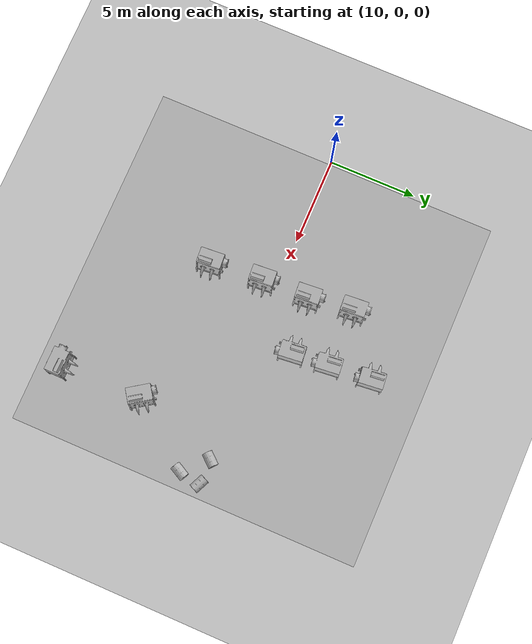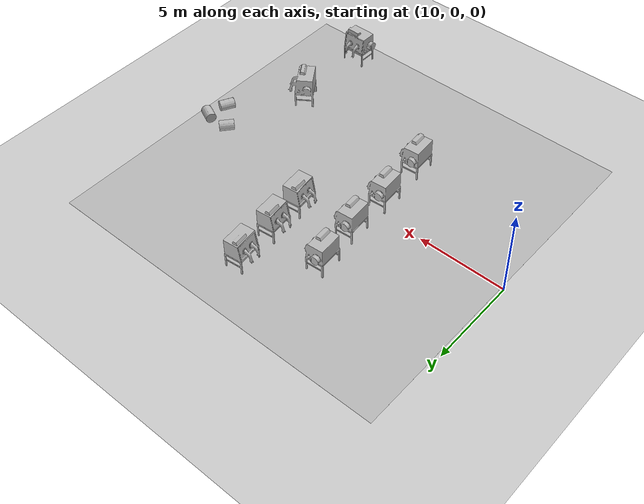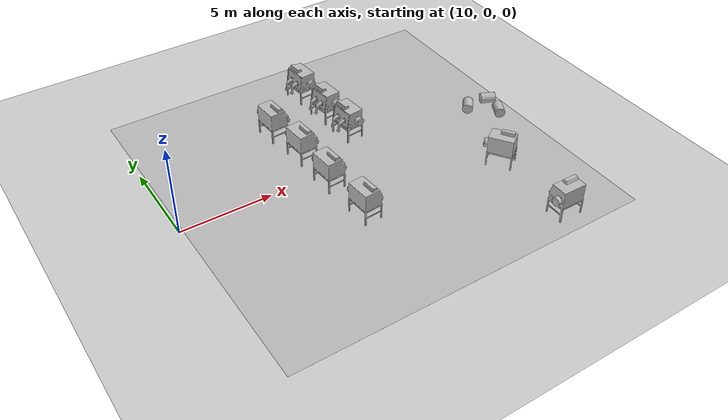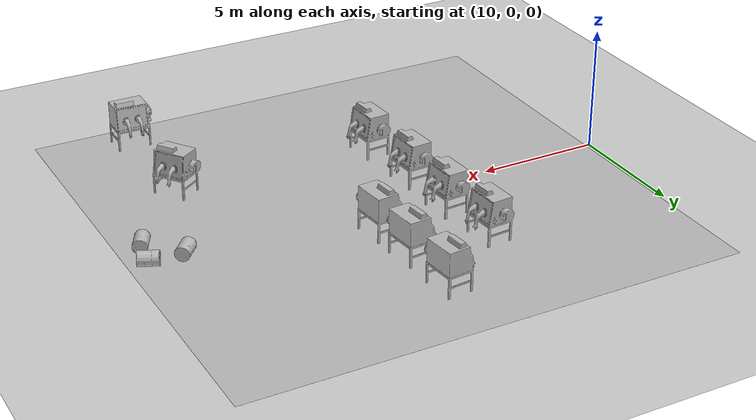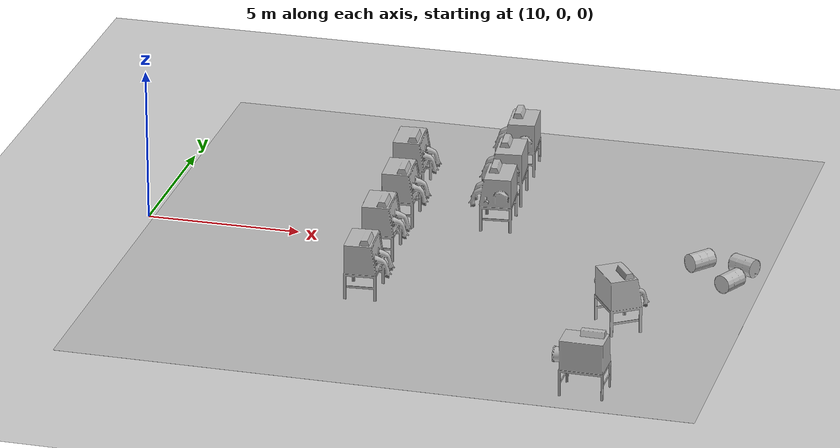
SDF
<sdf version="1.7">
 <world name="default">
  <model name="ground_plane">
   <static>1</static>
   <link name="link">
    <collision name="collision">
     <geometry><plane><normal>0 0 1</normal><size>100 100</size></plane></geometry>
     <surface><friction><ode><mu>100</mu><mu2>50</mu2></ode></friction></surface>
    </collision>
    <visual name="visual">
     <cast_shadows>0</cast_shadows>
     <geometry><plane><normal>0 0 1</normal><size>100 100</size></plane></geometry>
     <material>
      <script><uri>file://media/materials/scripts/gazebo.material</uri><name>Gazebo/Grey</name></script>
     </material>
    </visual>
   </link>
  </model>
  <model name="glovebox_clone_1_clone_clone">
   <static>0</static>
   <link name="link">
    <visual name="visual">
     <geometry><mesh><uri>model://glovebox/meshes/glovebox.obj</uri></mesh></geometry>
    </visual>
    <collision name="collision">
     <geometry><mesh><uri>model://glovebox/meshes/glovebox.obj</uri></mesh></geometry>
    </collision>
    <inertial>
     <inertia><ixx>1</ixx><ixy>0</ixy><ixz>0</ixz><iyy>1</iyy><iyz>0</iyz><izz>1</izz></inertia>
     <mass>1</mass>
    </inertial>
   </link>
   <pose>17.5628 4.38134 -0.000172 1.57075 0.000172 1.64229</pose>
  </model>
  <model name="glovebox_clone_1_clone_clone_0">
   <static>0</static>
   <link name="link">
    <visual name="visual">
     <geometry><mesh><uri>model://glovebox/meshes/glovebox.obj</uri></mesh></geometry>
    </visual>
    <collision name="collision">
     <geometry><mesh><uri>model://glovebox/meshes/glovebox.obj</uri></mesh></geometry>
    </collision>
    <inertial>
     <inertia><ixx>1</ixx><ixy>0</ixy><ixz>0</ixz><iyy>1</iyy><iyz>0</iyz><izz>1</izz></inertia>
     <mass>1</mass>
    </inertial>
   </link>
   <pose>17.8879 1.84437 -0.000104 1.57085 0.000199 1.64229</pose>
  </model>
  <model name="glovebox_clone_1_clone_clone_1">
   <static>0</static>
   <link name="link">
    <visual name="visual">
     <geometry><mesh><uri>model://glovebox/meshes/glovebox.obj</uri></mesh></geometry>
    </visual>
    <collision name="collision">
     <geometry><mesh><uri>model://glovebox/meshes/glovebox.obj</uri></mesh></geometry>
    </collision>
    <inertial>
     <inertia><ixx>1</ixx><ixy>0</ixy><ixz>0</ixz><iyy>1</iyy><iyz>0</iyz><izz>1</izz></inertia>
     <mass>1</mass>
    </inertial>
   </link>
   <pose>17.9528 -0.812704 -0.000104 1.57085 0.000199 1.64229</pose>
  </model>
  <model name="glovebox_clone_1_clone_clone_2">
   <static>0</static>
   <link name="link">
    <visual name="visual">
     <geometry><mesh><uri>model://glovebox/meshes/glovebox.obj</uri></mesh></geometry>
    </visual>
    <collision name="collision">
     <geometry><mesh><uri>model://glovebox/meshes/glovebox.obj</uri></mesh></geometry>
    </collision>
    <inertial>
     <inertia><ixx>1</ixx><ixy>0</ixy><ixz>0</ixz><iyy>1</iyy><iyz>0</iyz><izz>1</izz></inertia>
     <mass>1</mass>
    </inertial>
   </link>
   <pose>18.2007 -3.78016 -0.000104 1.57085 0.000199 1.64229</pose>
  </model>
  <model name="glovebox_clone_1_clone_0">
   <static>0</static>
   <link name="link">
    <visual name="visual">
     <geometry><mesh><uri>model://glovebox/meshes/glovebox.obj</uri></mesh></geometry>
    </visual>
    <collision name="collision">
     <geometry><mesh><uri>model://glovebox/meshes/glovebox.obj</uri></mesh></geometry>
    </collision>
    <inertial>
     <inertia><ixx>1</ixx><ixy>0</ixy><ixz>0</ixz><iyy>1</iyy><iyz>0</iyz><izz>1</izz></inertia>
     <mass>1</mass>
    </inertial>
   </link>
   <pose>20.6711 6.73429 -0.000963 1.57131 0.000806 -1.47053</pose>
  </model>
  <model name="glovebox_clone_1_clone_1">
   <static>0</static>
   <link name="link">
    <visual name="visual">
     <geometry><mesh><uri>model://glovebox/meshes/glovebox.obj</uri></mesh></geometry>
    </visual>
    <collision name="collision">
     <geometry><mesh><uri>model://glovebox/meshes/glovebox.obj</uri></mesh></geometry>
    </collision>
    <inertial>
     <inertia><ixx>1</ixx><ixy>0</ixy><ixz>0</ixz><iyy>1</iyy><iyz>0</iyz><izz>1</izz></inertia>
     <mass>1</mass>
    </inertial>
   </link>
   <pose>20.8396 4.3177 -0.000963 1.57131 0.000806 -1.47053</pose>
  </model>
  <model name="glovebox_clone_1_clone_2">
   <static>0</static>
   <link name="link">
    <visual name="visual">
     <geometry><mesh><uri>model://glovebox/meshes/glovebox.obj</uri></mesh></geometry>
    </visual>
    <collision name="collision">
     <geometry><mesh><uri>model://glovebox/meshes/glovebox.obj</uri></mesh></geometry>
    </collision>
    <inertial>
     <inertia><ixx>1</ixx><ixy>0</ixy><ixz>0</ixz><iyy>1</iyy><iyz>0</iyz><izz>1</izz></inertia>
     <mass>1</mass>
    </inertial>
   </link>
   <pose>21.0042 2.24708 -0.000963 1.57131 0.000806 -1.47053</pose>
  </model>
  <model name="glovebox_clone_1_clone_2_clone">
   <static>0</static>
   <link name="link">
    <visual name="visual">
     <geometry><mesh><uri>model://glovebox/meshes/glovebox.obj</uri></mesh></geometry>
    </visual>
    <collision name="collision">
     <geometry><mesh><uri>model://glovebox/meshes/glovebox.obj</uri></mesh></geometry>
    </collision>
    <inertial>
     <inertia><ixx>1</ixx><ixy>0</ixy><ixz>0</ixz><iyy>1</iyy><iyz>0</iyz><izz>1</izz></inertia>
     <mass>1</mass>
    </inertial>
   </link>
   <pose>26.4311 -4.25808 -0.000104 1.57085 0.000199 2.17169</pose>
  </model>
  <model name="glovebox_clone_1_clone_2_clone_clone">
   <static>0</static>
   <link name="link">
    <visual name="visual">
     <geometry><mesh><uri>model://glovebox/meshes/glovebox.obj</uri></mesh></geometry>
    </visual>
    <collision name="collision">
     <geometry><mesh><uri>model://glovebox/meshes/glovebox.obj</uri></mesh></geometry>
    </collision>
    <inertial>
     <inertia><ixx>1</ixx><ixy>0</ixy><ixz>0</ixz><iyy>1</iyy><iyz>0</iyz><izz>1</izz></inertia>
     <mass>1</mass>
    </inertial>
   </link>
   <pose>26.4998 -8.9814 -0.000172 1.57075 0.000172 3.13367</pose>
  </model>
  <model name="toxic_barrel_clone_clone_0_clone_1">
   <static>0</static>
   <link name="link">
    <visual name="visual">
     <geometry><mesh><uri>model://toxic_barrel/meshes/barrel_red.obj</uri></mesh></geometry>
    </visual>
    <collision name="collision">
     <geometry><mesh><uri>model://toxic_barrel/meshes/barrel_red.obj</uri></mesh></geometry>
    </collision>
    <inertial>
     <inertia><ixx>1</ixx><ixy>0</ixy><ixz>0</ixz><iyy>1</iyy><iyz>0</iyz><izz>1</izz></inertia>
     <mass>1</mass>
    </inertial>
   </link>
   <pose>29.2165 -0.771963 0.306213 3.14157 -0.196379 2.6539</pose>
  </model>
  <model name="toxic_barrel_clone_clone_0_clone_2">
   <static>0</static>
   <link name="link">
    <visual name="visual">
     <geometry><mesh><uri>model://toxic_barrel/meshes/barrel_red.obj</uri></mesh></geometry>
    </visual>
    <collision name="collision">
     <geometry><mesh><uri>model://toxic_barrel/meshes/barrel_red.obj</uri></mesh></geometry>
    </collision>
    <inertial>
     <inertia><ixx>1</ixx><ixy>0</ixy><ixz>0</ixz><iyy>1</iyy><iyz>0</iyz><izz>1</izz></inertia>
     <mass>1</mass>
    </inertial>
   </link>
   <pose>29.4113 0.449484 0.306206 0 -1.37441 -2.00121</pose>
  </model>
  <model name="toxic_barrel_clone_clone_0_clone_1_clone">
   <static>0</static>
   <link name="link">
    <visual name="visual">
     <geometry><mesh><uri>model://toxic_barrel/meshes/barrel_red.obj</uri></mesh></geometry>
    </visual>
    <collision name="collision">
     <geometry><mesh><uri>model://toxic_barrel/meshes/barrel_red.obj</uri></mesh></geometry>
    </collision>
    <inertial>
     <inertia><ixx>1</ixx><ixy>0</ixy><ixz>0</ixz><iyy>1</iyy><iyz>0</iyz><izz>1</izz></inertia>
     <mass>1</mass>
    </inertial>
   </link>
   <pose>27.9952 0.473553 0.306204 3e-06 -0.589066 -0.706102</pose>
  </model>
  <model name="Floor_room_0">
   <link name="main">
    <pose>0 0 0.01 0 -0 0</pose>
    <collision name="main_Collision"><geometry><box><size>20 20 0.001</size></box></geometry></collision>
    <visual name="main_Visual">
     <geometry><box><size>20 20 0.001</size></box></geometry>
     <material>
      <script>
       <uri>model://Floor_room/materials/scripts</uri>
       <uri>model://Floor_room/materials/textures</uri>
       <name>floor_room</name>
      </script>
     </material>
    </visual>
   </link>
   <static>1</static>
   <pose>20.1681 -0.289227 0 0 -0 0</pose>
  </model>
 </world>
</sdf>
